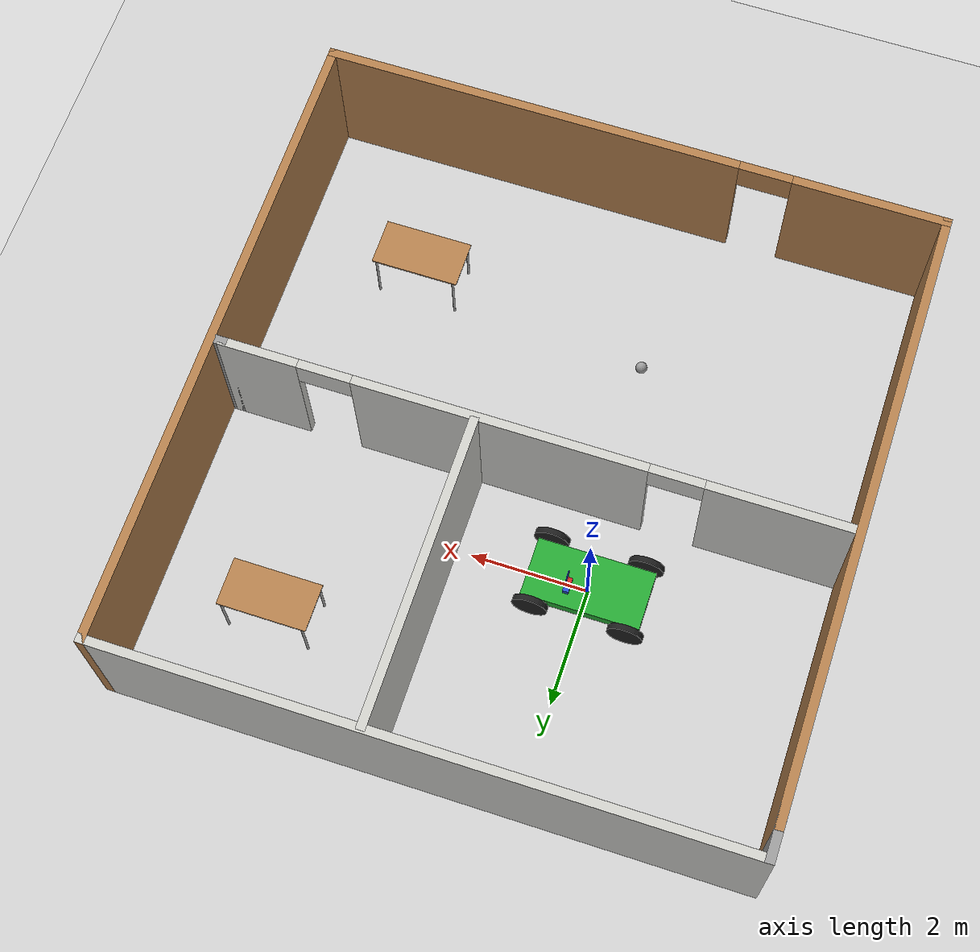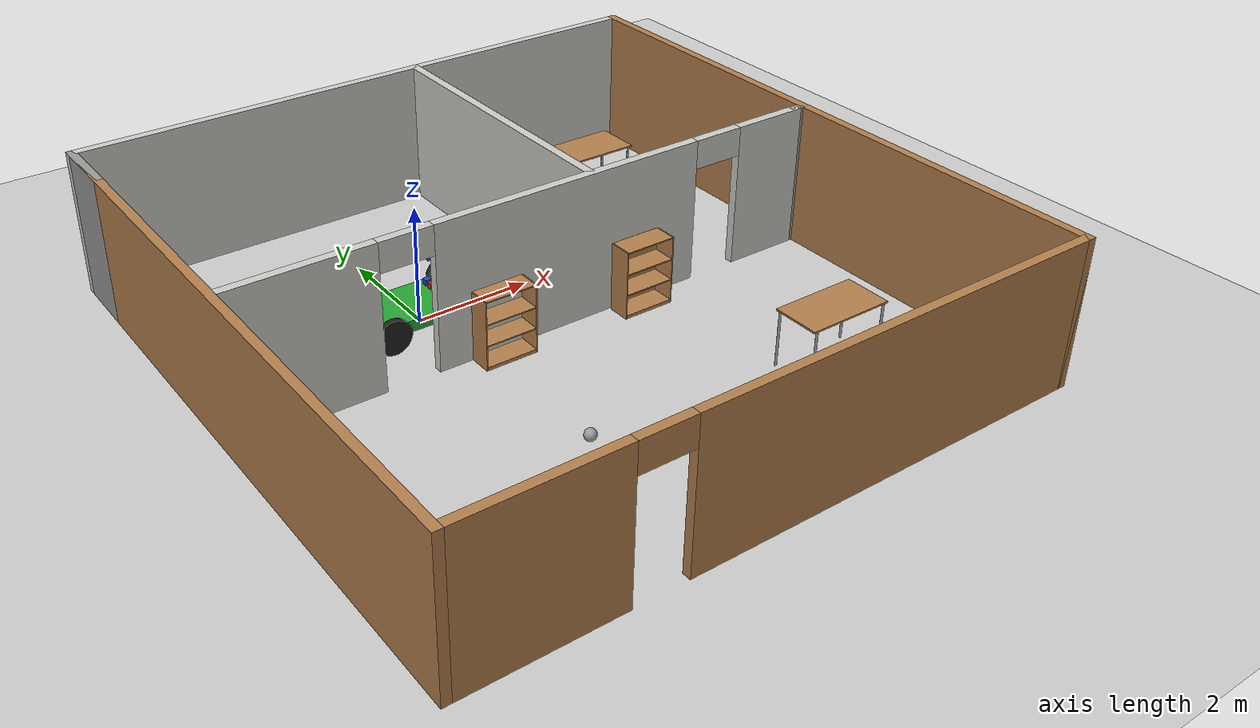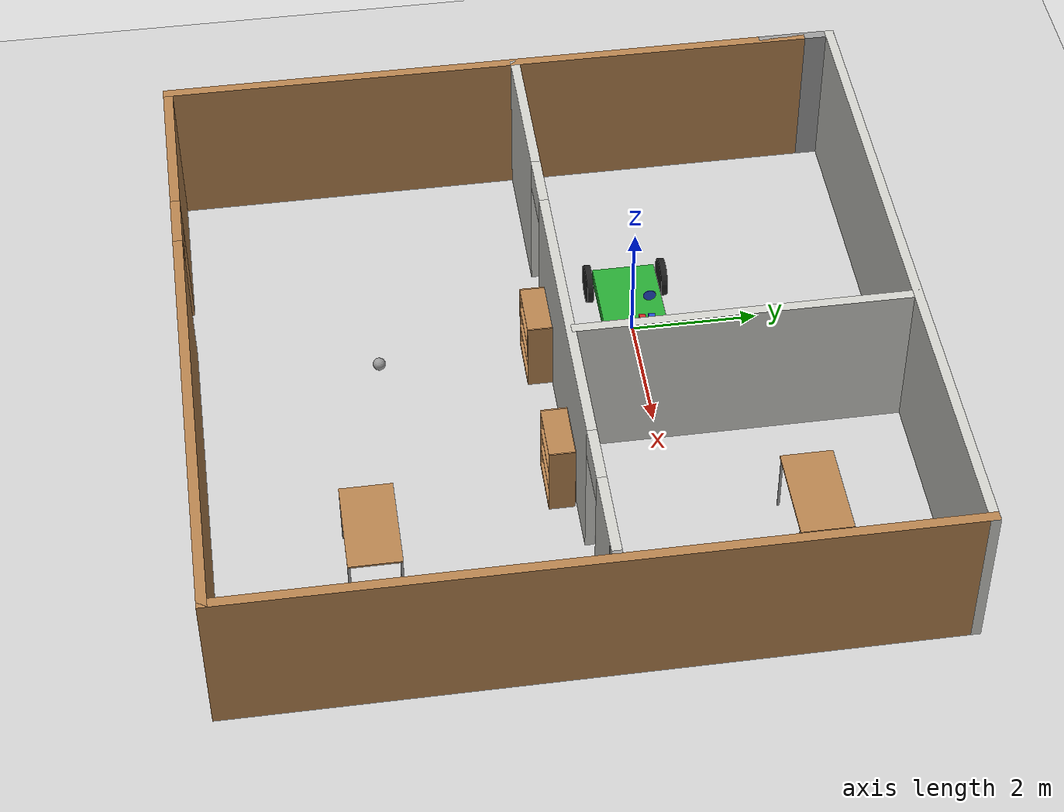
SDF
<sdf version="1.6">
 <world name="default">
  <model name="ground_plane">
   <static>1</static>
   <link name="link">
    <collision name="collision">
     <geometry><plane><normal>0 0 1</normal><size>100 100</size></plane></geometry>
     <surface>
      <contact><collide_bitmask>65535</collide_bitmask></contact>
      <friction><ode><mu>100</mu><mu2>50</mu2></ode></friction>
     </surface>
    </collision>
    <visual name="visual">
     <cast_shadows>0</cast_shadows>
     <geometry><plane><normal>0 0 1</normal><size>100 100</size></plane></geometry>
     <material>
      <script><uri>file://media/materials/scripts/gazebo.material</uri><name>Gazebo/Grey</name></script>
     </material>
    </visual>
   </link>
  </model>
  <model name="Building">
   <pose>1.44163 -1.55872 0 0 -0 0</pose>
   <link name="Wall_1">
    <collision name="Wall_1_Collision">
     <geometry><box><size>10.5 0.15 2.5</size></box></geometry>
     <pose>0 0 1.25 0 -0 0</pose>
    </collision>
    <visual name="Wall_1_Visual">
     <pose>0 0 1.25 0 -0 0</pose>
     <geometry><box><size>10.5 0.15 2.5</size></box></geometry>
     <material>
      <script><uri>file://media/materials/scripts/gazebo.material</uri><name>Gazebo/Wood</name></script>
      <ambient>1 1 1 1</ambient>
     </material>
     <meta><layer>0</layer></meta>
    </visual>
    <pose>-5.3 -0.25 0 0 0 -1.5708</pose>
   </link>
   <link name="Wall_10">
    <collision name="Wall_10_Collision">
     <geometry><box><size>5.25 0.15 2.5</size></box></geometry>
     <pose>0 0 1.25 0 -0 0</pose>
    </collision>
    <visual name="Wall_10_Visual">
     <pose>0 0 1.25 0 -0 0</pose>
     <geometry><box><size>5.25 0.15 2.5</size></box></geometry>
     <material>
      <script><uri>file://media/materials/scripts/gazebo.material</uri><name>Gazebo/CeilingTiled</name></script>
      <ambient>0.760784 0.662745 0.627451 1</ambient>
     </material>
     <meta><layer>0</layer></meta>
    </visual>
    <pose>0.883047 2.83497 0 0 0 -1.5708</pose>
   </link>
   <link name="Wall_2">
    <pose>0 -5.425 0 0 -0 0</pose>
    <visual name="Wall_2_Visual_0">
     <pose>-4.0429 0 1.25 0 -0 0</pose>
     <geometry><box><size>2.66419 0.15 2.5</size></box></geometry>
     <material>
      <script><uri>file://media/materials/scripts/gazebo.material</uri><name>Gazebo/Wood</name></script>
      <ambient>1 1 1 1</ambient>
     </material>
     <meta><layer>0</layer></meta>
    </visual>
    <collision name="Wall_2_Collision_0">
     <geometry><box><size>2.66419 0.15 2.5</size></box></geometry>
     <pose>-4.0429 0 1.25 0 -0 0</pose>
    </collision>
    <visual name="Wall_2_Visual_1">
     <pose>1.7821 0 1.25 0 -0 0</pose>
     <geometry><box><size>7.18581 0.15 2.5</size></box></geometry>
     <material>
      <script><uri>file://media/materials/scripts/gazebo.material</uri><name>Gazebo/Wood</name></script>
      <ambient>1 1 1 1</ambient>
     </material>
     <meta><layer>0</layer></meta>
    </visual>
    <collision name="Wall_2_Collision_1">
     <geometry><box><size>7.18581 0.15 2.5</size></box></geometry>
     <pose>1.7821 0 1.25 0 -0 0</pose>
    </collision>
    <visual name="Wall_2_Visual_2">
     <pose>-2.26081 0 2.25 0 -0 0</pose>
     <geometry><box><size>0.9 0.15 0.5</size></box></geometry>
     <material>
      <script><uri>file://media/materials/scripts/gazebo.material</uri><name>Gazebo/Wood</name></script>
      <ambient>1 1 1 1</ambient>
     </material>
     <meta><layer>0</layer></meta>
    </visual>
    <collision name="Wall_2_Collision_2">
     <geometry><box><size>0.9 0.15 0.5</size></box></geometry>
     <pose>-2.26081 0 2.25 0 -0 0</pose>
    </collision>
   </link>
   <link name="Wall_3">
    <collision name="Wall_3_Collision">
     <geometry><box><size>11 0.15 2.5</size></box></geometry>
     <pose>0 0 1.25 0 -0 0</pose>
    </collision>
    <visual name="Wall_3_Visual">
     <pose>0 0 1.25 0 -0 0</pose>
     <geometry><box><size>11 0.15 2.5</size></box></geometry>
     <material>
      <script><uri>file://media/materials/scripts/gazebo.material</uri><name>Gazebo/Wood</name></script>
      <ambient>1 1 1 1</ambient>
     </material>
     <meta><layer>0</layer></meta>
    </visual>
    <pose>5.3 0 0 0 -0 1.5708</pose>
   </link>
   <link name="Wall_4">
    <collision name="Wall_4_Collision">
     <geometry><box><size>10.75 0.15 2.5</size></box></geometry>
     <pose>0 0 1.25 0 -0 0</pose>
    </collision>
    <visual name="Wall_4_Visual">
     <pose>0 0 1.25 0 -0 0</pose>
     <geometry><box><size>10.75 0.15 2.5</size></box></geometry>
     <material>
      <script><uri>file://media/materials/scripts/gazebo.material</uri><name>Gazebo/CeilingTiled</name></script>
      <ambient>0.760784 0.662745 0.627451 1</ambient>
     </material>
     <meta><layer>0</layer></meta>
    </visual>
    <pose>0 5.425 0 0 -0 3.14159</pose>
   </link>
   <link name="Wall_5">
    <collision name="Wall_5_Collision">
     <geometry><box><size>1.25 0.15 2.5</size></box></geometry>
     <pose>0 0 1.25 0 -0 0</pose>
    </collision>
    <visual name="Wall_5_Visual">
     <pose>0 0 1.25 0 -0 0</pose>
     <geometry><box><size>1.25 0.15 2.5</size></box></geometry>
     <material>
      <script><uri>file://media/materials/scripts/gazebo.material</uri><name>Gazebo/Grey</name></script>
      <ambient>1 1 1 1</ambient>
     </material>
     <meta><layer>0</layer></meta>
    </visual>
    <pose>-5.3 4.875 0 0 0 -1.5708</pose>
   </link>
   <link name="Wall_7">
    <pose>-0.075527 0.198253 0 0 -0 0</pose>
    <visual name="Wall_7_Visual_0">
     <pose>-4.00664 0 1.25 0 -0 0</pose>
     <geometry><box><size>2.48672 0.15 2.5</size></box></geometry>
     <material>
      <script><uri>file://media/materials/scripts/gazebo.material</uri><name>Gazebo/CeilingTiled</name></script>
      <ambient>0.760784 0.662745 0.627451 1</ambient>
     </material>
     <meta><layer>0</layer></meta>
    </visual>
    <collision name="Wall_7_Collision_0">
     <geometry><box><size>2.48672 0.15 2.5</size></box></geometry>
     <pose>-4.00664 0 1.25 0 -0 0</pose>
    </collision>
    <visual name="Wall_7_Visual_1">
     <pose>0.572839 0 1.25 0 -0 0</pose>
     <geometry><box><size>4.87224 0.15 2.5</size></box></geometry>
     <material>
      <script><uri>file://media/materials/scripts/gazebo.material</uri><name>Gazebo/CeilingTiled</name></script>
      <ambient>0.760784 0.662745 0.627451 1</ambient>
     </material>
     <meta><layer>0</layer></meta>
    </visual>
    <collision name="Wall_7_Collision_1">
     <geometry><box><size>4.87224 0.15 2.5</size></box></geometry>
     <pose>0.572839 0 1.25 0 -0 0</pose>
    </collision>
    <visual name="Wall_7_Visual_2">
     <pose>4.57948 0 1.25 0 -0 0</pose>
     <geometry><box><size>1.34104 0.15 2.5</size></box></geometry>
     <material>
      <script><uri>file://media/materials/scripts/gazebo.material</uri><name>Gazebo/CeilingTiled</name></script>
      <ambient>0.760784 0.662745 0.627451 1</ambient>
     </material>
     <meta><layer>0</layer></meta>
    </visual>
    <collision name="Wall_7_Collision_2">
     <geometry><box><size>1.34104 0.15 2.5</size></box></geometry>
     <pose>4.57948 0 1.25 0 -0 0</pose>
    </collision>
    <visual name="Wall_7_Visual_3">
     <pose>-2.31328 0 2.25 0 -0 0</pose>
     <geometry><box><size>0.9 0.15 0.5</size></box></geometry>
     <material>
      <script><uri>file://media/materials/scripts/gazebo.material</uri><name>Gazebo/CeilingTiled</name></script>
      <ambient>0.760784 0.662745 0.627451 1</ambient>
     </material>
     <meta><layer>0</layer></meta>
    </visual>
    <collision name="Wall_7_Collision_3">
     <geometry><box><size>0.9 0.15 0.5</size></box></geometry>
     <pose>-2.31328 0 2.25 0 -0 0</pose>
    </collision>
    <visual name="Wall_7_Visual_4">
     <pose>3.45896 0 2.25 0 -0 0</pose>
     <geometry><box><size>0.9 0.15 0.5</size></box></geometry>
     <material>
      <script><uri>file://media/materials/scripts/gazebo.material</uri><name>Gazebo/CeilingTiled</name></script>
      <ambient>0.760784 0.662745 0.627451 1</ambient>
     </material>
     <meta><layer>0</layer></meta>
    </visual>
    <collision name="Wall_7_Collision_4">
     <geometry><box><size>0.9 0.15 0.5</size></box></geometry>
     <pose>3.45896 0 2.25 0 -0 0</pose>
    </collision>
   </link>
   <link name="Wall_8">
    <collision name="Wall_8_Collision">
     <geometry><box><size>0.25 0.15 2.5</size></box></geometry>
     <pose>0 0 1.25 0 -0 0</pose>
    </collision>
    <visual name="Wall_8_Visual">
     <pose>0 0 1.25 0 -0 0</pose>
     <geometry><box><size>0.25 0.15 2.5</size></box></geometry>
     <material>
      <script><uri>file://media/materials/scripts/gazebo.material</uri><name>Gazebo/Grey</name></script>
      <ambient>1 1 1 1</ambient>
     </material>
     <meta><layer>0</layer></meta>
    </visual>
    <pose>5.14947 0.198253 0 0 -0 0</pose>
   </link>
   <static>1</static>
  </model>
  <model name="bookshelf">
   <static>1</static>
   <link name="link">
    <inertial><mass>1</mass></inertial>
    <collision name="back">
     <pose>0 0.005 0.6 0 -0 0</pose>
     <geometry><box><size>0.9 0.01 1.2</size></box></geometry>
    </collision>
    <visual name="visual1">
     <pose>0 0.005 0.6 0 -0 0</pose>
     <geometry><box><size>0.9 0.01 1.2</size></box></geometry>
     <material>
      <script><uri>file://media/materials/scripts/gazebo.material</uri><name>Gazebo/Wood</name></script>
     </material>
    </visual>
    <collision name="left_side">
     <pose>0.45 -0.195 0.6 0 -0 0</pose>
     <geometry><box><size>0.02 0.4 1.2</size></box></geometry>
    </collision>
    <visual name="visual2">
     <pose>0.45 -0.195 0.6 0 -0 0</pose>
     <geometry><box><size>0.02 0.4 1.2</size></box></geometry>
     <material>
      <script><uri>file://media/materials/scripts/gazebo.material</uri><name>Gazebo/Wood</name></script>
     </material>
    </visual>
    <collision name="right_side">
     <pose>-0.45 -0.195 0.6 0 -0 0</pose>
     <geometry><box><size>0.02 0.4 1.2</size></box></geometry>
    </collision>
    <visual name="visual3">
     <pose>-0.45 -0.195 0.6 0 -0 0</pose>
     <geometry><box><size>0.02 0.4 1.2</size></box></geometry>
     <material>
      <script><uri>file://media/materials/scripts/gazebo.material</uri><name>Gazebo/Wood</name></script>
     </material>
    </visual>
    <collision name="bottom">
     <pose>0 -0.195 0.03 0 -0 0</pose>
     <geometry><box><size>0.88 0.4 0.06</size></box></geometry>
    </collision>
    <visual name="visual4">
     <pose>0 -0.195 0.03 0 -0 0</pose>
     <geometry><box><size>0.88 0.4 0.06</size></box></geometry>
     <material>
      <script><uri>file://media/materials/scripts/gazebo.material</uri><name>Gazebo/Wood</name></script>
     </material>
    </visual>
    <collision name="top">
     <pose>0 -0.195 1.19 0 -0 0</pose>
     <geometry><box><size>0.88 0.4 0.02</size></box></geometry>
    </collision>
    <visual name="visual5">
     <pose>0 -0.195 1.19 0 -0 0</pose>
     <geometry><box><size>0.88 0.4 0.02</size></box></geometry>
     <material>
      <script><uri>file://media/materials/scripts/gazebo.material</uri><name>Gazebo/Wood</name></script>
     </material>
    </visual>
    <collision name="low_shelf">
     <pose>0 -0.195 0.43 0 -0 0</pose>
     <geometry><box><size>0.88 0.4 0.02</size></box></geometry>
    </collision>
    <visual name="visual6">
     <pose>0 -0.195 0.43 0 -0 0</pose>
     <geometry><box><size>0.88 0.4 0.02</size></box></geometry>
     <material>
      <script><uri>file://media/materials/scripts/gazebo.material</uri><name>Gazebo/Wood</name></script>
     </material>
    </visual>
    <collision name="high_shelf">
     <pose>0 -0.195 0.8 0 -0 0</pose>
     <geometry><box><size>0.88 0.4 0.02</size></box></geometry>
    </collision>
    <visual name="visual7">
     <pose>0 -0.195 0.8 0 -0 0</pose>
     <geometry><box><size>0.88 0.4 0.02</size></box></geometry>
     <material>
      <script><uri>file://media/materials/scripts/gazebo.material</uri><name>Gazebo/Wood</name></script>
     </material>
    </visual>
   </link>
   <pose>0.541201 -1.42703 0 0 -0 0</pose>
  </model>
  <model name="bookshelf_0">
   <static>1</static>
   <link name="link">
    <inertial><mass>1</mass></inertial>
    <collision name="back">
     <pose>0 0.005 0.6 0 -0 0</pose>
     <geometry><box><size>0.9 0.01 1.2</size></box></geometry>
    </collision>
    <visual name="visual1">
     <pose>0 0.005 0.6 0 -0 0</pose>
     <geometry><box><size>0.9 0.01 1.2</size></box></geometry>
     <material>
      <script><uri>file://media/materials/scripts/gazebo.material</uri><name>Gazebo/Wood</name></script>
     </material>
    </visual>
    <collision name="left_side">
     <pose>0.45 -0.195 0.6 0 -0 0</pose>
     <geometry><box><size>0.02 0.4 1.2</size></box></geometry>
    </collision>
    <visual name="visual2">
     <pose>0.45 -0.195 0.6 0 -0 0</pose>
     <geometry><box><size>0.02 0.4 1.2</size></box></geometry>
     <material>
      <script><uri>file://media/materials/scripts/gazebo.material</uri><name>Gazebo/Wood</name></script>
     </material>
    </visual>
    <collision name="right_side">
     <pose>-0.45 -0.195 0.6 0 -0 0</pose>
     <geometry><box><size>0.02 0.4 1.2</size></box></geometry>
    </collision>
    <visual name="visual3">
     <pose>-0.45 -0.195 0.6 0 -0 0</pose>
     <geometry><box><size>0.02 0.4 1.2</size></box></geometry>
     <material>
      <script><uri>file://media/materials/scripts/gazebo.material</uri><name>Gazebo/Wood</name></script>
     </material>
    </visual>
    <collision name="bottom">
     <pose>0 -0.195 0.03 0 -0 0</pose>
     <geometry><box><size>0.88 0.4 0.06</size></box></geometry>
    </collision>
    <visual name="visual4">
     <pose>0 -0.195 0.03 0 -0 0</pose>
     <geometry><box><size>0.88 0.4 0.06</size></box></geometry>
     <material>
      <script><uri>file://media/materials/scripts/gazebo.material</uri><name>Gazebo/Wood</name></script>
     </material>
    </visual>
    <collision name="top">
     <pose>0 -0.195 1.19 0 -0 0</pose>
     <geometry><box><size>0.88 0.4 0.02</size></box></geometry>
    </collision>
    <visual name="visual5">
     <pose>0 -0.195 1.19 0 -0 0</pose>
     <geometry><box><size>0.88 0.4 0.02</size></box></geometry>
     <material>
      <script><uri>file://media/materials/scripts/gazebo.material</uri><name>Gazebo/Wood</name></script>
     </material>
    </visual>
    <collision name="low_shelf">
     <pose>0 -0.195 0.43 0 -0 0</pose>
     <geometry><box><size>0.88 0.4 0.02</size></box></geometry>
    </collision>
    <visual name="visual6">
     <pose>0 -0.195 0.43 0 -0 0</pose>
     <geometry><box><size>0.88 0.4 0.02</size></box></geometry>
     <material>
      <script><uri>file://media/materials/scripts/gazebo.material</uri><name>Gazebo/Wood</name></script>
     </material>
    </visual>
    <collision name="high_shelf">
     <pose>0 -0.195 0.8 0 -0 0</pose>
     <geometry><box><size>0.88 0.4 0.02</size></box></geometry>
    </collision>
    <visual name="visual7">
     <pose>0 -0.195 0.8 0 -0 0</pose>
     <geometry><box><size>0.88 0.4 0.02</size></box></geometry>
     <material>
      <script><uri>file://media/materials/scripts/gazebo.material</uri><name>Gazebo/Wood</name></script>
     </material>
    </visual>
   </link>
   <pose>3.14333 -1.46647 0 0 -0 0</pose>
  </model>
  <model name="table">
   <static>1</static>
   <link name="link">
    <collision name="surface">
     <pose>0 0 1 0 -0 0</pose>
     <geometry><box><size>1.5 0.8 0.03</size></box></geometry>
     <surface><friction><ode><mu>0.6</mu><mu2>0.6</mu2></ode></friction></surface>
    </collision>
    <visual name="visual1">
     <pose>0 0 1 0 -0 0</pose>
     <geometry><box><size>1.5 0.8 0.03</size></box></geometry>
     <material>
      <script><uri>file://media/materials/scripts/gazebo.material</uri><name>Gazebo/Wood</name></script>
     </material>
    </visual>
    <collision name="front_left_leg">
     <pose>0.68 0.38 0.5 0 -0 0</pose>
     <geometry><cylinder><radius>0.02</radius><length>1</length></cylinder></geometry>
    </collision>
    <visual name="front_left_leg">
     <pose>0.68 0.38 0.5 0 -0 0</pose>
     <geometry><cylinder><radius>0.02</radius><length>1</length></cylinder></geometry>
     <material>
      <script><uri>file://media/materials/scripts/gazebo.material</uri><name>Gazebo/Grey</name></script>
     </material>
    </visual>
    <collision name="front_right_leg">
     <pose>0.68 -0.38 0.5 0 -0 0</pose>
     <geometry><cylinder><radius>0.02</radius><length>1</length></cylinder></geometry>
    </collision>
    <visual name="front_right_leg">
     <pose>0.68 -0.38 0.5 0 -0 0</pose>
     <geometry><cylinder><radius>0.02</radius><length>1</length></cylinder></geometry>
     <material>
      <script><uri>file://media/materials/scripts/gazebo.material</uri><name>Gazebo/Grey</name></script>
     </material>
    </visual>
    <collision name="back_right_leg">
     <pose>-0.68 -0.38 0.5 0 -0 0</pose>
     <geometry><cylinder><radius>0.02</radius><length>1</length></cylinder></geometry>
    </collision>
    <visual name="back_right_leg">
     <pose>-0.68 -0.38 0.5 0 -0 0</pose>
     <geometry><cylinder><radius>0.02</radius><length>1</length></cylinder></geometry>
     <material>
      <script><uri>file://media/materials/scripts/gazebo.material</uri><name>Gazebo/Grey</name></script>
     </material>
    </visual>
    <collision name="back_left_leg">
     <pose>-0.68 0.38 0.5 0 -0 0</pose>
     <geometry><cylinder><radius>0.02</radius><length>1</length></cylinder></geometry>
    </collision>
    <visual name="back_left_leg">
     <pose>-0.68 0.38 0.5 0 -0 0</pose>
     <geometry><cylinder><radius>0.02</radius><length>1</length></cylinder></geometry>
     <material>
      <script><uri>file://media/materials/scripts/gazebo.material</uri><name>Gazebo/Grey</name></script>
     </material>
    </visual>
   </link>
   <pose>4.40398 -4.57182 0 0 -0 0</pose>
  </model>
  <model name="table_0">
   <static>1</static>
   <link name="link">
    <collision name="surface">
     <pose>0 0 1 0 -0 0</pose>
     <geometry><box><size>1.5 0.8 0.03</size></box></geometry>
     <surface><friction><ode><mu>0.6</mu><mu2>0.6</mu2></ode></friction></surface>
    </collision>
    <visual name="visual1">
     <pose>0 0 1 0 -0 0</pose>
     <geometry><box><size>1.5 0.8 0.03</size></box></geometry>
     <material>
      <script><uri>file://media/materials/scripts/gazebo.material</uri><name>Gazebo/Wood</name></script>
     </material>
    </visual>
    <collision name="front_left_leg">
     <pose>0.68 0.38 0.5 0 -0 0</pose>
     <geometry><cylinder><radius>0.02</radius><length>1</length></cylinder></geometry>
    </collision>
    <visual name="front_left_leg">
     <pose>0.68 0.38 0.5 0 -0 0</pose>
     <geometry><cylinder><radius>0.02</radius><length>1</length></cylinder></geometry>
     <material>
      <script><uri>file://media/materials/scripts/gazebo.material</uri><name>Gazebo/Grey</name></script>
     </material>
    </visual>
    <collision name="front_right_leg">
     <pose>0.68 -0.38 0.5 0 -0 0</pose>
     <geometry><cylinder><radius>0.02</radius><length>1</length></cylinder></geometry>
    </collision>
    <visual name="front_right_leg">
     <pose>0.68 -0.38 0.5 0 -0 0</pose>
     <geometry><cylinder><radius>0.02</radius><length>1</length></cylinder></geometry>
     <material>
      <script><uri>file://media/materials/scripts/gazebo.material</uri><name>Gazebo/Grey</name></script>
     </material>
    </visual>
    <collision name="back_right_leg">
     <pose>-0.68 -0.38 0.5 0 -0 0</pose>
     <geometry><cylinder><radius>0.02</radius><length>1</length></cylinder></geometry>
    </collision>
    <visual name="back_right_leg">
     <pose>-0.68 -0.38 0.5 0 -0 0</pose>
     <geometry><cylinder><radius>0.02</radius><length>1</length></cylinder></geometry>
     <material>
      <script><uri>file://media/materials/scripts/gazebo.material</uri><name>Gazebo/Grey</name></script>
     </material>
    </visual>
    <collision name="back_left_leg">
     <pose>-0.68 0.38 0.5 0 -0 0</pose>
     <geometry><cylinder><radius>0.02</radius><length>1</length></cylinder></geometry>
    </collision>
    <visual name="back_left_leg">
     <pose>-0.68 0.38 0.5 0 -0 0</pose>
     <geometry><cylinder><radius>0.02</radius><length>1</length></cylinder></geometry>
     <material>
      <script><uri>file://media/materials/scripts/gazebo.material</uri><name>Gazebo/Grey</name></script>
     </material>
    </visual>
   </link>
   <pose>4.67399 1.93414 0 0 -0 0</pose>
  </model>
  <model name="car">
   <link name="chassis">
    <pose>0 0 0.3 0 -0 0</pose>
    <collision name="collision"><geometry><box><size>2 1 0.2</size></box></geometry></collision>
    <visual name="visual">
     <geometry><box><size>2 1 0.2</size></box></geometry>
     <material>
      <script><uri>file://media/materials/scripts/gazebo.material</uri><name>Gazebo/Green</name></script>
     </material>
    </visual>
    <inertial>
     <inertia><ixx>1</ixx><ixy>0</ixy><ixz>0</ixz><iyy>1</iyy><iyz>0</iyz><izz>1</izz></inertia>
     <mass>1</mass>
    </inertial>
   </link>
   <link name="front_left_wheel">
    <pose>0.8 0.6 0.3 -0 1.5707 1.5707</pose>
    <collision name="collision">
     <geometry><cylinder><radius>0.3</radius><length>0.1</length></cylinder></geometry>
    </collision>
    <visual name="visual">
     <geometry><cylinder><radius>0.3</radius><length>0.1</length></cylinder></geometry>
     <material>
      <script><uri>file://media/materials/scripts/gazebo.material</uri><name>Gazebo/Black</name></script>
     </material>
    </visual>
    <inertial>
     <inertia><ixx>1</ixx><ixy>0</ixy><ixz>0</ixz><iyy>1</iyy><iyz>0</iyz><izz>1</izz></inertia>
     <mass>1</mass>
    </inertial>
   </link>
   <link name="front_right_wheel">
    <pose>0.8 -0.6 0.3 -0 1.5707 1.5707</pose>
    <collision name="collision">
     <geometry><cylinder><radius>0.3</radius><length>0.1</length></cylinder></geometry>
    </collision>
    <visual name="visual">
     <geometry><cylinder><radius>0.3</radius><length>0.1</length></cylinder></geometry>
     <material>
      <script><uri>file://media/materials/scripts/gazebo.material</uri><name>Gazebo/Black</name></script>
     </material>
    </visual>
    <inertial>
     <inertia><ixx>1</ixx><ixy>0</ixy><ixz>0</ixz><iyy>1</iyy><iyz>0</iyz><izz>1</izz></inertia>
     <mass>1</mass>
    </inertial>
   </link>
   <link name="back_right_wheel">
    <pose>-0.8 -0.6 0.3 -0 1.5707 1.5707</pose>
    <collision name="collision">
     <geometry><cylinder><radius>0.3</radius><length>0.1</length></cylinder></geometry>
    </collision>
    <visual name="visual">
     <geometry><cylinder><radius>0.3</radius><length>0.1</length></cylinder></geometry>
     <material>
      <script><uri>file://media/materials/scripts/gazebo.material</uri><name>Gazebo/Black</name></script>
     </material>
    </visual>
    <inertial>
     <inertia><ixx>1</ixx><ixy>0</ixy><ixz>0</ixz><iyy>1</iyy><iyz>0</iyz><izz>1</izz></inertia>
     <mass>1</mass>
    </inertial>
   </link>
   <link name="back_left_wheel">
    <pose>-0.8 0.6 0.3 -0 1.5707 1.5707</pose>
    <collision name="collision">
     <geometry><cylinder><radius>0.3</radius><length>0.1</length></cylinder></geometry>
    </collision>
    <visual name="visual">
     <geometry><cylinder><radius>0.3</radius><length>0.1</length></cylinder></geometry>
     <material>
      <script><uri>file://media/materials/scripts/gazebo.material</uri><name>Gazebo/Black</name></script>
     </material>
    </visual>
    <inertial>
     <inertia><ixx>1</ixx><ixy>0</ixy><ixz>0</ixz><iyy>1</iyy><iyz>0</iyz><izz>1</izz></inertia>
     <mass>1</mass>
    </inertial>
   </link>
   <link name="gas_pedal">
    <pose>0.3 0.1 0.5 0 -0 0</pose>
    <collision name="collision"><geometry><box><size>0.1 0.1 0.1</size></box></geometry></collision>
    <visual name="visual">
     <geometry><box><size>0.1 0.1 0.1</size></box></geometry>
     <material>
      <script><uri>file://media/materials/scripts/gazebo.material</uri><name>Gazebo/Red</name></script>
     </material>
    </visual>
    <inertial>
     <inertia><ixx>1</ixx><ixy>0</ixy><ixz>0</ixz><iyy>1</iyy><iyz>0</iyz><izz>1</izz></inertia>
     <mass>1</mass>
    </inertial>
   </link>
   <link name="brake_pedal">
    <pose>0.3 0.25 0.5 0 -0 0</pose>
    <collision name="collision"><geometry><box><size>0.1 0.1 0.1</size></box></geometry></collision>
    <visual name="visual">
     <geometry><box><size>0.1 0.1 0.1</size></box></geometry>
     <material>
      <script><uri>file://media/materials/scripts/gazebo.material</uri><name>Gazebo/Blue</name></script>
     </material>
    </visual>
    <inertial>
     <inertia><ixx>1</ixx><ixy>0</ixy><ixz>0</ixz><iyy>1</iyy><iyz>0</iyz><izz>1</izz></inertia>
     <mass>1</mass>
    </inertial>
   </link>
   <link name="steering_wheel">
    <pose>0.3 0.2 1 0 1.5707 0</pose>
    <collision name="collision">
     <geometry><cylinder><radius>0.1</radius><length>0.01</length></cylinder></geometry>
    </collision>
    <visual name="visual">
     <geometry><cylinder><radius>0.1</radius><length>0.01</length></cylinder></geometry>
     <material>
      <script><uri>file://media/materials/scripts/gazebo.material</uri><name>Gazebo/Blue</name></script>
     </material>
    </visual>
    <inertial>
     <inertia><ixx>1</ixx><ixy>0</ixy><ixz>0</ixz><iyy>1</iyy><iyz>0</iyz><izz>1</izz></inertia>
     <mass>1</mass>
    </inertial>
   </link>
   <joint name="gas_joint" type="prismatic">
    <parent>chassis</parent>
    <child>gas_pedal</child>
    <axis>
     <xyz>1 0 0</xyz>
     <limit><lower>0</lower><upper>0.2</upper></limit>
     <use_parent_model_frame>1</use_parent_model_frame>
     <dynamics><spring_reference>0</spring_reference><spring_stiffness>0</spring_stiffness></dynamics>
    </axis>
   </joint>
   <joint name="brake_joint" type="prismatic">
    <parent>chassis</parent>
    <child>brake_pedal</child>
    <axis>
     <xyz>1 0 0</xyz>
     <limit><lower>0</lower><upper>0.2</upper></limit>
     <use_parent_model_frame>1</use_parent_model_frame>
     <dynamics><spring_reference>0</spring_reference><spring_stiffness>0</spring_stiffness></dynamics>
    </axis>
   </joint>
   <joint name="steering_joint" type="revolute">
    <parent>chassis</parent>
    <child>steering_wheel</child>
    <axis>
     <xyz>1 0 0</xyz>
     <limit><lower>-7.853</lower><upper>7.853</upper></limit>
     <use_parent_model_frame>1</use_parent_model_frame>
     <dynamics><spring_reference>0</spring_reference><spring_stiffness>0</spring_stiffness></dynamics>
    </axis>
   </joint>
   <joint name="front_left_joint" type="revolute2">
    <parent>chassis</parent>
    <child>front_left_wheel</child>
    <axis>
     <xyz>0 0 1</xyz>
     <limit><lower>-0.0500032</lower><upper>-0.0500032</upper></limit>
     <use_parent_model_frame>1</use_parent_model_frame>
     <dynamics><spring_reference>0</spring_reference><spring_stiffness>0</spring_stiffness></dynamics>
    </axis>
    <axis2>
     <xyz>0 1 0</xyz>
     <use_parent_model_frame>1</use_parent_model_frame>
     <dynamics><spring_reference>0</spring_reference><spring_stiffness>0</spring_stiffness></dynamics>
    </axis2>
    <physics><ode><limit><cfm>0</cfm><erp>0.9</erp></limit></ode></physics>
   </joint>
   <joint name="front_right_joint" type="revolute2">
    <parent>chassis</parent>
    <child>front_right_wheel</child>
    <axis>
     <xyz>0 0 1</xyz>
     <limit><lower>-0.0500032</lower><upper>-0.0500032</upper></limit>
     <use_parent_model_frame>1</use_parent_model_frame>
     <dynamics><spring_reference>0</spring_reference><spring_stiffness>0</spring_stiffness></dynamics>
    </axis>
    <axis2>
     <xyz>0 1 0</xyz>
     <use_parent_model_frame>1</use_parent_model_frame>
     <dynamics><spring_reference>0</spring_reference><spring_stiffness>0</spring_stiffness></dynamics>
    </axis2>
    <physics><ode><limit><cfm>0</cfm><erp>0.9</erp></limit></ode></physics>
   </joint>
   <joint name="back_right_joint" type="revolute2">
    <parent>chassis</parent>
    <child>back_right_wheel</child>
    <axis>
     <xyz>0 0 1</xyz>
     <limit><lower>0</lower><upper>0</upper></limit>
     <use_parent_model_frame>1</use_parent_model_frame>
     <dynamics><spring_reference>0</spring_reference><spring_stiffness>0</spring_stiffness></dynamics>
    </axis>
    <axis2>
     <xyz>0 1 0</xyz>
     <use_parent_model_frame>1</use_parent_model_frame>
     <dynamics><spring_reference>0</spring_reference><spring_stiffness>0</spring_stiffness></dynamics>
    </axis2>
    <physics><ode><limit><cfm>0</cfm><erp>0.9</erp></limit></ode></physics>
   </joint>
   <joint name="back_left_joint" type="revolute2">
    <parent>chassis</parent>
    <child>back_left_wheel</child>
    <axis>
     <xyz>0 0 1</xyz>
     <limit><lower>0</lower><upper>0</upper></limit>
     <use_parent_model_frame>1</use_parent_model_frame>
     <dynamics><spring_reference>0</spring_reference><spring_stiffness>0</spring_stiffness></dynamics>
    </axis>
    <axis2>
     <xyz>0 1 0</xyz>
     <use_parent_model_frame>1</use_parent_model_frame>
     <dynamics><spring_reference>0</spring_reference><spring_stiffness>0</spring_stiffness></dynamics>
    </axis2>
    <physics><ode><limit><cfm>0</cfm><erp>0.9</erp></limit></ode></physics>
   </joint>
   <plugin name="vehicle" filename="libVehiclePlugin.so">
    <front_left>front_left_joint</front_left>
    <front_right>front_right_joint</front_right>
    <back_left>back_left_joint</back_left>
    <back_right>back_right_joint</back_right>
    <gas>gas_joint</gas>
    <brake>brake_joint</brake>
    <steering>steering_joint</steering>
    <front_power>10</front_power>
    <rear_power>10</rear_power>
    <tire_angle_range>0.5</tire_angle_range>
    <max_speed>10</max_speed>
    <aero_load>0.1</aero_load>
   </plugin>
  </model>
  <model name="my_ball">
   <link name="link">
    <inertial>
     <mass>1</mass>
     <inertia><ixx>0.1</ixx><ixy>0</ixy><ixz>0</ixz><iyy>0.1</iyy><iyz>0</iyz><izz>0.1</izz></inertia>
    </inertial>
    <visual name="visual">
     <geometry><sphere><radius>0.1</radius></sphere></geometry>
     <material>
      <script><name>Gazebo/Grey</name><uri>file://media/materials/scripts/gazebo.material</uri></script>
      <shader type="vertex"><normal_map>__default__</normal_map></shader>
      <ambient>1 1 1 1</ambient>
      <diffuse>1 1 1 1</diffuse>
      <specular>1 1 1 1</specular>
      <emissive>1 1 1 1</emissive>
     </material>
    </visual>
    <collision name="collision">
     <geometry><sphere><radius>0.1</radius></sphere></geometry>
     <surface>
      <friction>
       <ode><mu>1</mu><mu2>1</mu2><fdir1>0 0 0</fdir1><slip1>0</slip1><slip2>0</slip2></ode>
       <torsional>
        <coefficient>1</coefficient>
        <patch_radius>0</patch_radius>
        <surface_radius>0</surface_radius>
        <use_patch_radius>1</use_patch_radius>
        <ode><slip>0</slip></ode>
       </torsional>
      </friction>
      <bounce><restitution_coefficient>0</restitution_coefficient><threshold>1e+06</threshold></bounce>
      <contact>
       <collide_without_contact>0</collide_without_contact>
       <collide_without_contact_bitmask>1</collide_without_contact_bitmask>
       <collide_bitmask>1</collide_bitmask>
       <ode>
        <soft_cfm>0</soft_cfm>
        <soft_erp>0.2</soft_erp>
        <kp>1e+13</kp>
        <kd>1</kd>
        <max_vel>0.01</max_vel>
        <min_depth>0</min_depth>
       </ode>
       <bullet>
        <split_impulse>1</split_impulse>
        <split_impulse_penetration_threshold>-0.01</split_impulse_penetration_threshold>
        <soft_cfm>0</soft_cfm>
        <soft_erp>0.2</soft_erp>
        <kp>1e+13</kp>
        <kd>1</kd>
       </bullet>
      </contact>
     </surface>
    </collision>
   </link>
   <static>0</static>
   <pose>0.321605 -4.08768 0.1 0 -0 0</pose>
  </model>
 </world>
</sdf>
